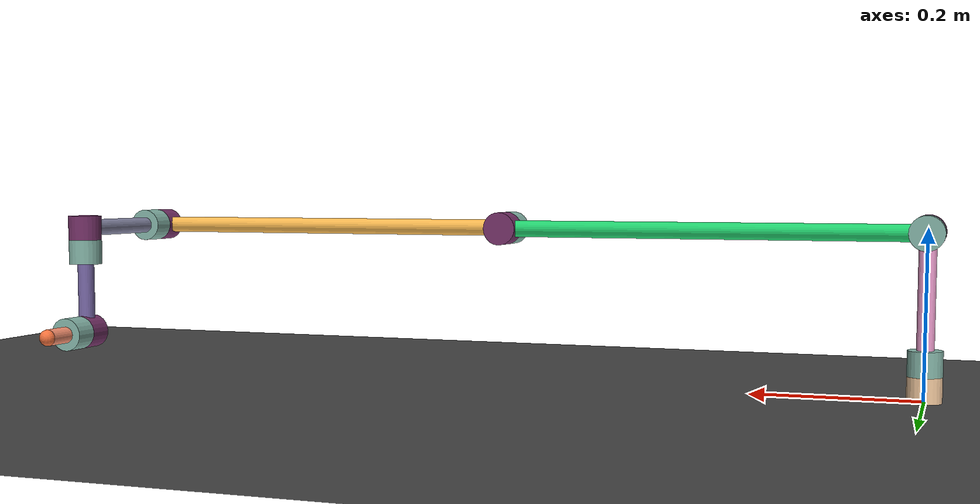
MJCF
<mujoco model="robot">
  <compiler angle="radian"/>
  <size njmax="500" nconmax="100"/>
  <asset>
    <texture type="skybox" builtin="gradient" rgb1="0.9 0.9 0.9" rgb2="0.5 0.5 0.5" width="512"
      height="512"/>
    <texture name="texplane" type="2d" builtin="checker" rgb1=".25 .25 .25" rgb2=".3 .3 .3"
      width="512" height="512" mark="cross" markrgb=".8 .8 .8"/>
    <material name="matplane" reflectance="0.2" texture="texplane" texrepeat="1 1" texuniform="true"/>

    <material name="joint_part1" rgba="0.525 0.713 0.662 1.0"/>
    <material name="joint_part2" rgba="0.462 0.196 0.411 1.0"/>
    <material name="base" rgba="0.956863 0.796078 0.631373 1.0"/>
    <material name="tip" rgba="0.956 0.450 0.243 1.0"/>
    <material name="link1" rgba="0.949 0.631 0.823 1.0"/>
    <material name="link2" rgba="0.133 0.827 0.435 1.0"/>
    <material name="link3" rgba="0.968 0.721 0.313 1.0"/>
    <material name="link4" rgba="0.52549 0.529412 0.647059 1.0"/>
    <material name="link5" rgba="0.478431 0.415686 0.662745 1.0"/>
    <material name="link6" rgba="0.988 0.580 0.450 1.0"/>
  </asset>
  <worldbody>
    <light directional="true" diffuse=".8 .8 .8" specular=".2 .2 .2" pos="0 0 5" dir="0 0 -1"
      castshadow="false"/>
    <geom name="floor" pos="0 0 -0.0" size="0 0 1" type="plane" material="matplane"/>
    <geom size="0.02 0.015" pos="0 0 0.015" type="cylinder" material="base"/>
    <body name="link1" pos="0 0 0.045">
      <inertial pos="0 0 0.075" mass="1" diaginertia="1 1 1"/>
      <joint name="joint1" pos="0 0 0" axis="0 0 1" limited="true" range="-6.28319 6.28319"/>
      <geom size="0.02 0.015" type="cylinder" material="joint_part1"/>
      <geom size="0.01 0.075" pos="0 0 0.075" type="cylinder" material="link1"/>
      <geom size="0.02 0.015" pos="0 0 0.15" quat="0.707107 0.707107 0 0" type="cylinder"
        material="joint_part2"/>
      <body name="link2" pos="0 0.03 0.15" quat="0.707107 0 0.707107 0">
        <inertial pos="0 0 0.25" mass="1" diaginertia="1 1 1"/>
        <joint name="joint2" pos="0 0 0" axis="0 1 0" limited="true" range="-6.28319 6.28319"/>
        <geom size="0.02 0.015" quat="0.707107 0.707107 0 0" type="cylinder" material="joint_part1"/>
        <geom size="0.01 0.25" pos="0 0 0.25" type="cylinder" material="link2"/>
        <geom size="0.02 0.015" pos="0 0 0.5" quat="0.707107 0.707107 0 0" type="cylinder"
          material="joint_part2"/>
        <body name="link3" pos="0 -0.03 0.5">
          <inertial pos="0 0 0.25" mass="1" diaginertia="1 1 1"/>
          <joint name="joint3" pos="0 0 0" axis="0 1 0" limited="true" range="-3.14159 3.14159"/>
          <geom size="0.02 0.015" quat="0.707107 0.707107 0 0" type="cylinder"
            material="joint_part1"/>
          <geom size="0.01 0.25" pos="0 0 0.25" type="cylinder" material="link3"/>
          <geom size="0.02 0.015" pos="0 0 0.5" quat="0.707107 0.707107 0 0" type="cylinder"
            material="joint_part2"/>
          <body name="link4" pos="0 0.03 0.5" quat="0.707107 0 0.707107 0">
            <inertial pos="0 0 0.075" mass="1" diaginertia="1 1 1"/>
            <joint name="joint4" pos="0 0 0" axis="0 1 0" limited="true" range="-6.28319 6.28319"/>
            <geom size="0.02 0.015" quat="0.707107 0.707107 0 0" type="cylinder"
              material="joint_part1"/>
            <geom size="0.01 0.075" pos="0 0.075 0" quat="0.707107 0.707107 0 0" type="cylinder"
              material="link4"/>
            <geom size="0.02 0.015" pos="0 0.15 0" type="cylinder" material="joint_part2"/>
            <body name="link5" pos="0 0.15 0.03">
              <inertial pos="0 0 0.05" mass="1" diaginertia="1 1 1"/>
              <joint name="joint5" pos="0 0 0" axis="0 0 1" limited="true" range="-6.28319 6.28319"/>
              <geom size="0.02 0.015" type="cylinder" material="joint_part1"/>
              <geom size="0.01 0.05" pos="0 0 0.05" type="cylinder" material="link5"/>
              <geom size="0.02 0.015" pos="0 0 0.1" quat="0.707107 0.707107 0 0" type="cylinder"
                material="joint_part2"/>
              <body name="link6" pos="0 0.03 0.1">
                <inertial pos="0 0.000208566 0.0248957" quat="0.850651 0.525731 0 0" mass="1.00419"
                  diaginertia="1 1 1"/>
                <joint name="joint6" pos="0 0 0" axis="0 1 0" limited="true"
                  range="-6.28319 6.28319"/>
                <geom size="0.02 0.015" quat="0.707107 0.707107 0 0" type="cylinder"
                  material="joint_part1"/>
                <geom size="0.01 0.025" pos="0 0.025 0" quat="0.707107 -0.707107 0 0"
                  type="cylinder" material="link6"/>
                <geom size="0.01" pos="0 0.05 0" quat="0.707107 -0.707107 0 0" material="tip"/>
              </body>
            </body>
          </body>
        </body>
      </body>
    </body>
  </worldbody>

</mujoco>
